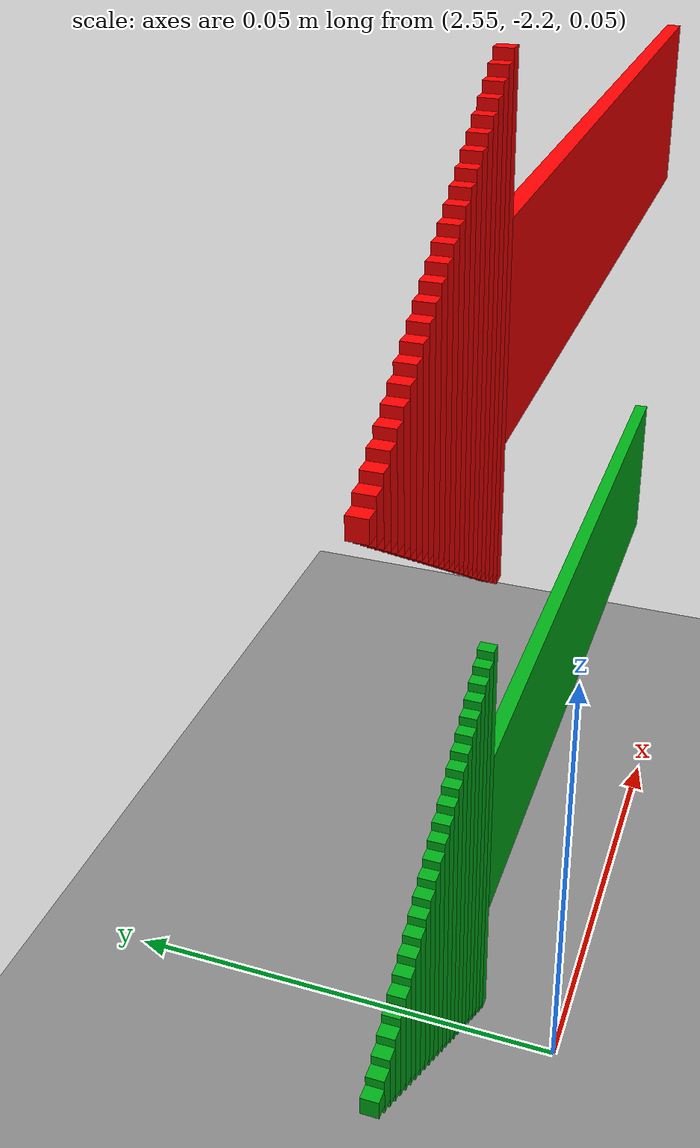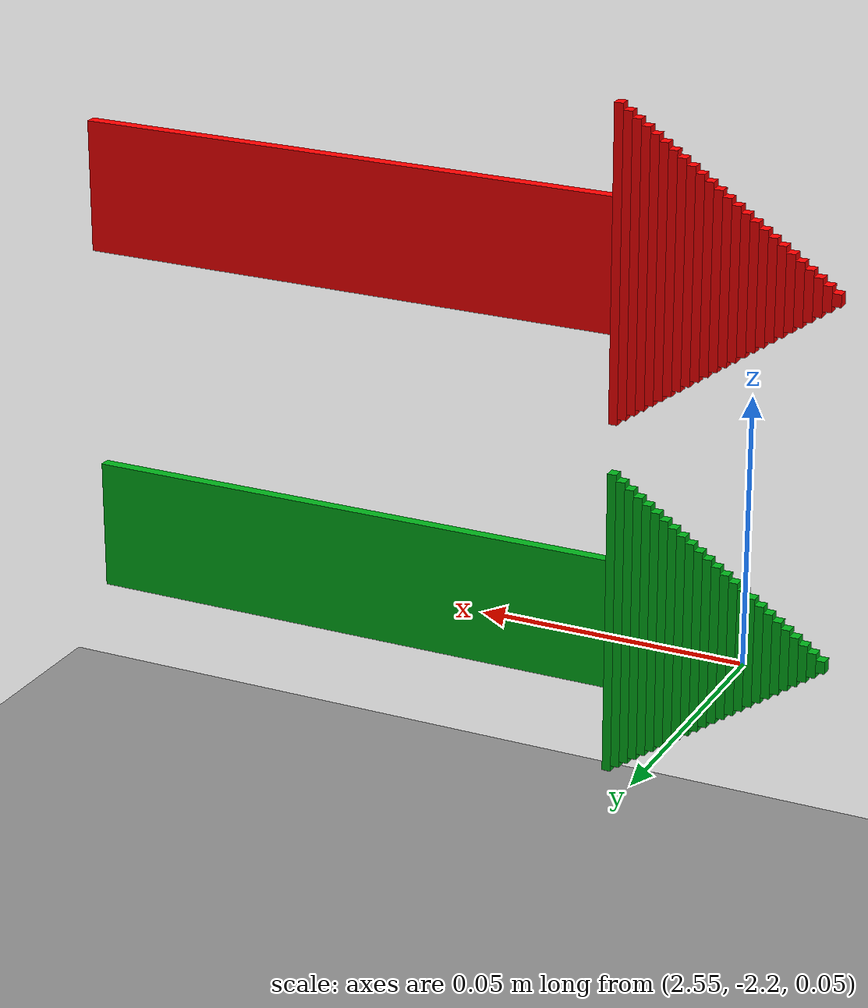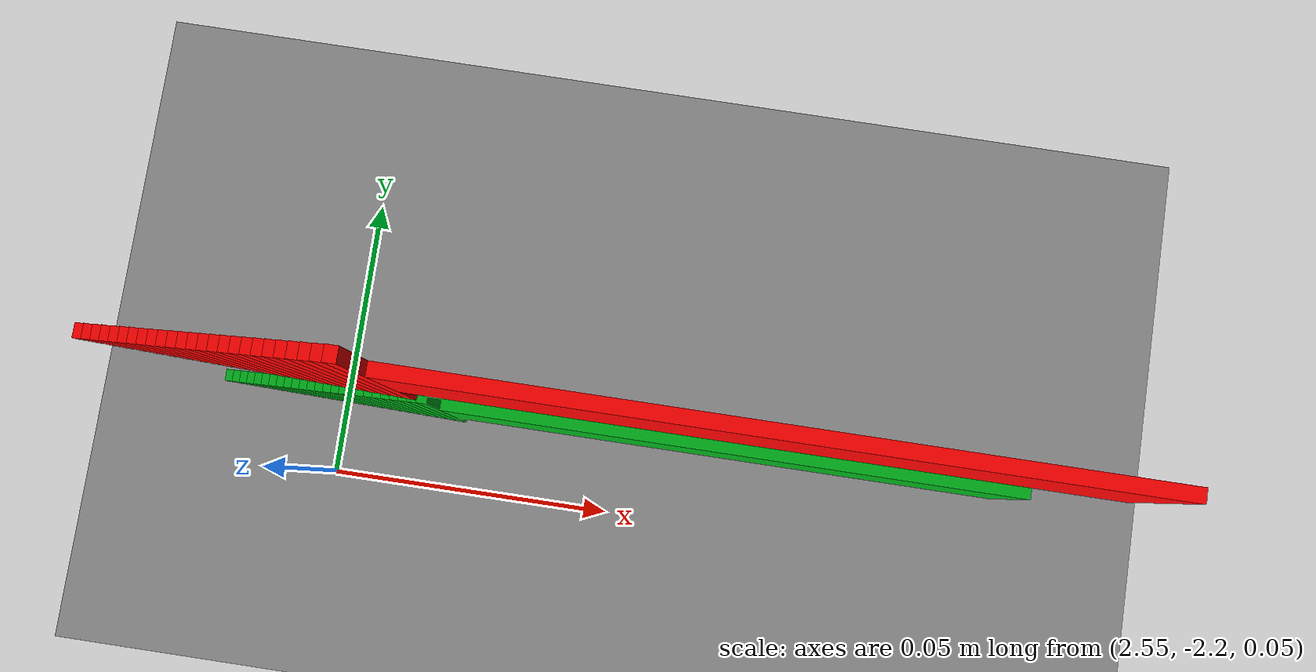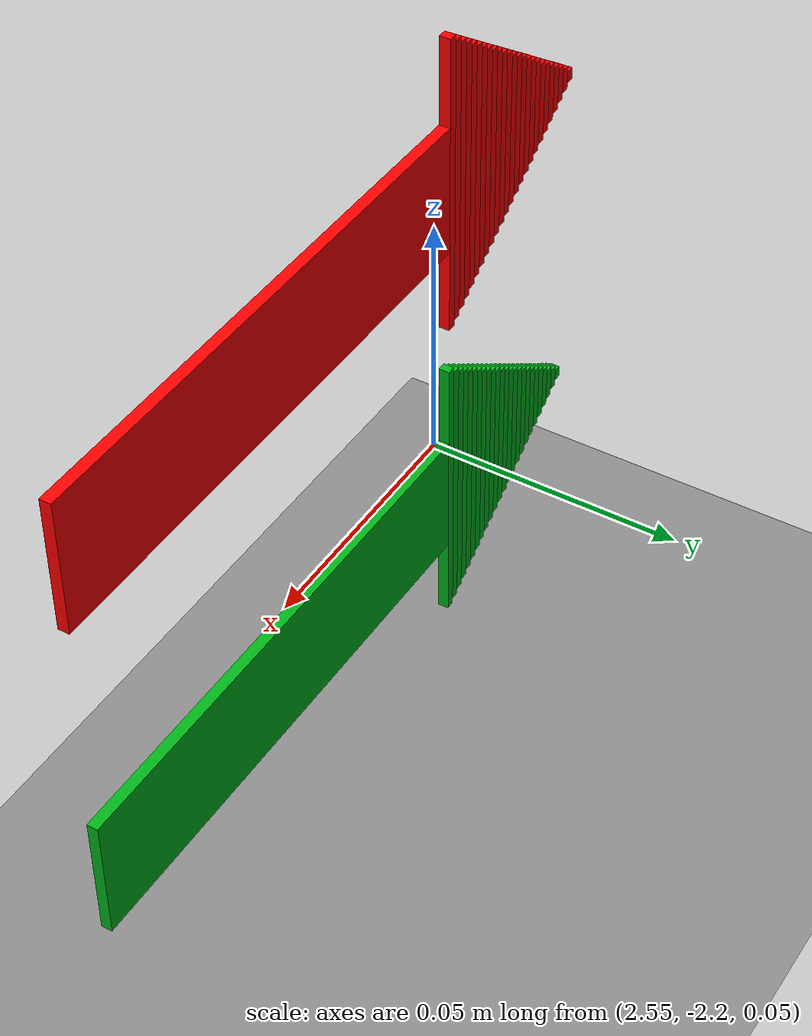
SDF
<sdf version="1.9">
 <world name="ros2_world">
  <model name="ground_plane">
   <static>true</static>
   <link name="link">
    <collision name="collision">
     <geometry><plane><normal>0 0 1</normal><size>10 10</size></plane></geometry>
    </collision>
    <visual name="visual">
     <geometry><plane><normal>0 0 1</normal><size>10 10</size></plane></geometry>
     <material><ambient>0.55 0.55 0.55 1</ambient><diffuse>0.55 0.55 0.55 1</diffuse></material>
    </visual>
   </link>
  </model>
  <model name="flechas">
   <static>true</static>
   <link name="flecha_1">
    <pose>2.6 -2.186 0.125 0 0 3.14159</pose>
    <visual name="p0">
     <pose>-0.02 0 0 0 0 0</pose>
     <geometry><box><size>0.1 0.002 0.024</size></box></geometry>
     <material><ambient>1 0 0 1</ambient><diffuse>1 0 0 1</diffuse></material>
    </visual>
    <visual name="p1">
     <pose>0.0308 0 0 0 0 0</pose>
     <geometry><box><size>0.0016 0.002 0.056</size></box></geometry>
     <material><ambient>1 0 0 1</ambient><diffuse>1 0 0 1</diffuse></material>
    </visual>
    <visual name="p2">
     <pose>0.0324 0 0 0 0 0</pose>
     <geometry><box><size>0.0016 0.002 0.05376</size></box></geometry>
     <material><ambient>1 0 0 1</ambient><diffuse>1 0 0 1</diffuse></material>
    </visual>
    <visual name="p3">
     <pose>0.034 0 0 0 0 0</pose>
     <geometry><box><size>0.0016 0.002 0.05152</size></box></geometry>
     <material><ambient>1 0 0 1</ambient><diffuse>1 0 0 1</diffuse></material>
    </visual>
    <visual name="p4">
     <pose>0.0356 0 0 0 0 0</pose>
     <geometry><box><size>0.0016 0.002 0.04928</size></box></geometry>
     <material><ambient>1 0 0 1</ambient><diffuse>1 0 0 1</diffuse></material>
    </visual>
    <visual name="p5">
     <pose>0.0372 0 0 0 0 0</pose>
     <geometry><box><size>0.0016 0.002 0.04704</size></box></geometry>
     <material><ambient>1 0 0 1</ambient><diffuse>1 0 0 1</diffuse></material>
    </visual>
    <visual name="p6">
     <pose>0.0388 0 0 0 0 0</pose>
     <geometry><box><size>0.0016 0.002 0.0448</size></box></geometry>
     <material><ambient>1 0 0 1</ambient><diffuse>1 0 0 1</diffuse></material>
    </visual>
    <visual name="p7">
     <pose>0.0404 0 0 0 0 0</pose>
     <geometry><box><size>0.0016 0.002 0.04256</size></box></geometry>
     <material><ambient>1 0 0 1</ambient><diffuse>1 0 0 1</diffuse></material>
    </visual>
    <visual name="p8">
     <pose>0.042 0 0 0 0 0</pose>
     <geometry><box><size>0.0016 0.002 0.04032</size></box></geometry>
     <material><ambient>1 0 0 1</ambient><diffuse>1 0 0 1</diffuse></material>
    </visual>
    <visual name="p9">
     <pose>0.0436 0 0 0 0 0</pose>
     <geometry><box><size>0.0016 0.002 0.03808</size></box></geometry>
     <material><ambient>1 0 0 1</ambient><diffuse>1 0 0 1</diffuse></material>
    </visual>
    <visual name="p10">
     <pose>0.0452 0 0 0 0 0</pose>
     <geometry><box><size>0.0016 0.002 0.03584</size></box></geometry>
     <material><ambient>1 0 0 1</ambient><diffuse>1 0 0 1</diffuse></material>
    </visual>
    <visual name="p11">
     <pose>0.0468 0 0 0 0 0</pose>
     <geometry><box><size>0.0016 0.002 0.0336</size></box></geometry>
     <material><ambient>1 0 0 1</ambient><diffuse>1 0 0 1</diffuse></material>
    </visual>
    <visual name="p12">
     <pose>0.0484 0 0 0 0 0</pose>
     <geometry><box><size>0.0016 0.002 0.03136</size></box></geometry>
     <material><ambient>1 0 0 1</ambient><diffuse>1 0 0 1</diffuse></material>
    </visual>
    <visual name="p13">
     <pose>0.05 0 0 0 0 0</pose>
     <geometry><box><size>0.0016 0.002 0.02912</size></box></geometry>
     <material><ambient>1 0 0 1</ambient><diffuse>1 0 0 1</diffuse></material>
    </visual>
    <visual name="p14">
     <pose>0.0516 0 0 0 0 0</pose>
     <geometry><box><size>0.0016 0.002 0.02688</size></box></geometry>
     <material><ambient>1 0 0 1</ambient><diffuse>1 0 0 1</diffuse></material>
    </visual>
    <visual name="p15">
     <pose>0.0532 0 0 0 0 0</pose>
     <geometry><box><size>0.0016 0.002 0.02464</size></box></geometry>
     <material><ambient>1 0 0 1</ambient><diffuse>1 0 0 1</diffuse></material>
    </visual>
    <visual name="p16">
     <pose>0.0548 0 0 0 0 0</pose>
     <geometry><box><size>0.0016 0.002 0.0224</size></box></geometry>
     <material><ambient>1 0 0 1</ambient><diffuse>1 0 0 1</diffuse></material>
    </visual>
    <visual name="p17">
     <pose>0.0564 0 0 0 0 0</pose>
     <geometry><box><size>0.0016 0.002 0.02016</size></box></geometry>
     <material><ambient>1 0 0 1</ambient><diffuse>1 0 0 1</diffuse></material>
    </visual>
    <visual name="p18">
     <pose>0.058 0 0 0 0 0</pose>
     <geometry><box><size>0.0016 0.002 0.01792</size></box></geometry>
     <material><ambient>1 0 0 1</ambient><diffuse>1 0 0 1</diffuse></material>
    </visual>
    <visual name="p19">
     <pose>0.0596 0 0 0 0 0</pose>
     <geometry><box><size>0.0016 0.002 0.01568</size></box></geometry>
     <material><ambient>1 0 0 1</ambient><diffuse>1 0 0 1</diffuse></material>
    </visual>
    <visual name="p20">
     <pose>0.0612 0 0 0 0 0</pose>
     <geometry><box><size>0.0016 0.002 0.01344</size></box></geometry>
     <material><ambient>1 0 0 1</ambient><diffuse>1 0 0 1</diffuse></material>
    </visual>
    <visual name="p21">
     <pose>0.0628 0 0 0 0 0</pose>
     <geometry><box><size>0.0016 0.002 0.0112</size></box></geometry>
     <material><ambient>1 0 0 1</ambient><diffuse>1 0 0 1</diffuse></material>
    </visual>
    <visual name="p22">
     <pose>0.0644 0 0 0 0 0</pose>
     <geometry><box><size>0.0016 0.002 0.00896</size></box></geometry>
     <material><ambient>1 0 0 1</ambient><diffuse>1 0 0 1</diffuse></material>
    </visual>
    <visual name="p23">
     <pose>0.066 0 0 0 0 0</pose>
     <geometry><box><size>0.0016 0.002 0.00672</size></box></geometry>
     <material><ambient>1 0 0 1</ambient><diffuse>1 0 0 1</diffuse></material>
    </visual>
    <visual name="p24">
     <pose>0.0676 0 0 0 0 0</pose>
     <geometry><box><size>0.0016 0.002 0.00448</size></box></geometry>
     <material><ambient>1 0 0 1</ambient><diffuse>1 0 0 1</diffuse></material>
    </visual>
    <visual name="p25">
     <pose>0.0692 0 0 0 0 0</pose>
     <geometry><box><size>0.0016 0.002 0.00224</size></box></geometry>
     <material><ambient>1 0 0 1</ambient><diffuse>1 0 0 1</diffuse></material>
    </visual>
   </link>
   <link name="flecha_2">
    <pose>2.6 -2.186 0.06 0 0 3.14159</pose>
    <visual name="p0">
     <pose>-0.02 0 0 0 0 0</pose>
     <geometry><box><size>0.1 0.002 0.024</size></box></geometry>
     <material><ambient>0 0.7 0.1 1</ambient><diffuse>0 0.7 0.1 1</diffuse></material>
    </visual>
    <visual name="p1">
     <pose>0.0308 0 0 0 0 0</pose>
     <geometry><box><size>0.0016 0.002 0.056</size></box></geometry>
     <material><ambient>0 0.7 0.1 1</ambient><diffuse>0 0.7 0.1 1</diffuse></material>
    </visual>
    <visual name="p2">
     <pose>0.0324 0 0 0 0 0</pose>
     <geometry><box><size>0.0016 0.002 0.05376</size></box></geometry>
     <material><ambient>0 0.7 0.1 1</ambient><diffuse>0 0.7 0.1 1</diffuse></material>
    </visual>
    <visual name="p3">
     <pose>0.034 0 0 0 0 0</pose>
     <geometry><box><size>0.0016 0.002 0.05152</size></box></geometry>
     <material><ambient>0 0.7 0.1 1</ambient><diffuse>0 0.7 0.1 1</diffuse></material>
    </visual>
    <visual name="p4">
     <pose>0.0356 0 0 0 0 0</pose>
     <geometry><box><size>0.0016 0.002 0.04928</size></box></geometry>
     <material><ambient>0 0.7 0.1 1</ambient><diffuse>0 0.7 0.1 1</diffuse></material>
    </visual>
    <visual name="p5">
     <pose>0.0372 0 0 0 0 0</pose>
     <geometry><box><size>0.0016 0.002 0.04704</size></box></geometry>
     <material><ambient>0 0.7 0.1 1</ambient><diffuse>0 0.7 0.1 1</diffuse></material>
    </visual>
    <visual name="p6">
     <pose>0.0388 0 0 0 0 0</pose>
     <geometry><box><size>0.0016 0.002 0.0448</size></box></geometry>
     <material><ambient>0 0.7 0.1 1</ambient><diffuse>0 0.7 0.1 1</diffuse></material>
    </visual>
    <visual name="p7">
     <pose>0.0404 0 0 0 0 0</pose>
     <geometry><box><size>0.0016 0.002 0.04256</size></box></geometry>
     <material><ambient>0 0.7 0.1 1</ambient><diffuse>0 0.7 0.1 1</diffuse></material>
    </visual>
    <visual name="p8">
     <pose>0.042 0 0 0 0 0</pose>
     <geometry><box><size>0.0016 0.002 0.04032</size></box></geometry>
     <material><ambient>0 0.7 0.1 1</ambient><diffuse>0 0.7 0.1 1</diffuse></material>
    </visual>
    <visual name="p9">
     <pose>0.0436 0 0 0 0 0</pose>
     <geometry><box><size>0.0016 0.002 0.03808</size></box></geometry>
     <material><ambient>0 0.7 0.1 1</ambient><diffuse>0 0.7 0.1 1</diffuse></material>
    </visual>
    <visual name="p10">
     <pose>0.0452 0 0 0 0 0</pose>
     <geometry><box><size>0.0016 0.002 0.03584</size></box></geometry>
     <material><ambient>0 0.7 0.1 1</ambient><diffuse>0 0.7 0.1 1</diffuse></material>
    </visual>
    <visual name="p11">
     <pose>0.0468 0 0 0 0 0</pose>
     <geometry><box><size>0.0016 0.002 0.0336</size></box></geometry>
     <material><ambient>0 0.7 0.1 1</ambient><diffuse>0 0.7 0.1 1</diffuse></material>
    </visual>
    <visual name="p12">
     <pose>0.0484 0 0 0 0 0</pose>
     <geometry><box><size>0.0016 0.002 0.03136</size></box></geometry>
     <material><ambient>0 0.7 0.1 1</ambient><diffuse>0 0.7 0.1 1</diffuse></material>
    </visual>
    <visual name="p13">
     <pose>0.05 0 0 0 0 0</pose>
     <geometry><box><size>0.0016 0.002 0.02912</size></box></geometry>
     <material><ambient>0 0.7 0.1 1</ambient><diffuse>0 0.7 0.1 1</diffuse></material>
    </visual>
    <visual name="p14">
     <pose>0.0516 0 0 0 0 0</pose>
     <geometry><box><size>0.0016 0.002 0.02688</size></box></geometry>
     <material><ambient>0 0.7 0.1 1</ambient><diffuse>0 0.7 0.1 1</diffuse></material>
    </visual>
    <visual name="p15">
     <pose>0.0532 0 0 0 0 0</pose>
     <geometry><box><size>0.0016 0.002 0.02464</size></box></geometry>
     <material><ambient>0 0.7 0.1 1</ambient><diffuse>0 0.7 0.1 1</diffuse></material>
    </visual>
    <visual name="p16">
     <pose>0.0548 0 0 0 0 0</pose>
     <geometry><box><size>0.0016 0.002 0.0224</size></box></geometry>
     <material><ambient>0 0.7 0.1 1</ambient><diffuse>0 0.7 0.1 1</diffuse></material>
    </visual>
    <visual name="p17">
     <pose>0.0564 0 0 0 0 0</pose>
     <geometry><box><size>0.0016 0.002 0.02016</size></box></geometry>
     <material><ambient>0 0.7 0.1 1</ambient><diffuse>0 0.7 0.1 1</diffuse></material>
    </visual>
    <visual name="p18">
     <pose>0.058 0 0 0 0 0</pose>
     <geometry><box><size>0.0016 0.002 0.01792</size></box></geometry>
     <material><ambient>0 0.7 0.1 1</ambient><diffuse>0 0.7 0.1 1</diffuse></material>
    </visual>
    <visual name="p19">
     <pose>0.0596 0 0 0 0 0</pose>
     <geometry><box><size>0.0016 0.002 0.01568</size></box></geometry>
     <material><ambient>0 0.7 0.1 1</ambient><diffuse>0 0.7 0.1 1</diffuse></material>
    </visual>
    <visual name="p20">
     <pose>0.0612 0 0 0 0 0</pose>
     <geometry><box><size>0.0016 0.002 0.01344</size></box></geometry>
     <material><ambient>0 0.7 0.1 1</ambient><diffuse>0 0.7 0.1 1</diffuse></material>
    </visual>
    <visual name="p21">
     <pose>0.0628 0 0 0 0 0</pose>
     <geometry><box><size>0.0016 0.002 0.0112</size></box></geometry>
     <material><ambient>0 0.7 0.1 1</ambient><diffuse>0 0.7 0.1 1</diffuse></material>
    </visual>
    <visual name="p22">
     <pose>0.0644 0 0 0 0 0</pose>
     <geometry><box><size>0.0016 0.002 0.00896</size></box></geometry>
     <material><ambient>0 0.7 0.1 1</ambient><diffuse>0 0.7 0.1 1</diffuse></material>
    </visual>
    <visual name="p23">
     <pose>0.066 0 0 0 0 0</pose>
     <geometry><box><size>0.0016 0.002 0.00672</size></box></geometry>
     <material><ambient>0 0.7 0.1 1</ambient><diffuse>0 0.7 0.1 1</diffuse></material>
    </visual>
    <visual name="p24">
     <pose>0.0676 0 0 0 0 0</pose>
     <geometry><box><size>0.0016 0.002 0.00448</size></box></geometry>
     <material><ambient>0 0.7 0.1 1</ambient><diffuse>0 0.7 0.1 1</diffuse></material>
    </visual>
    <visual name="p25">
     <pose>0.0692 0 0 0 0 0</pose>
     <geometry><box><size>0.0016 0.002 0.00224</size></box></geometry>
     <material><ambient>0 0.7 0.1 1</ambient><diffuse>0 0.7 0.1 1</diffuse></material>
    </visual>
   </link>
  </model>
 </world>
</sdf>
